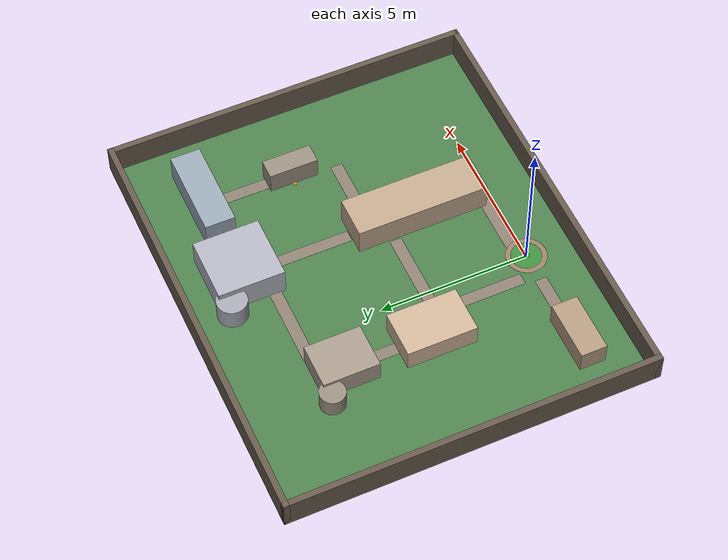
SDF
<?xml version="1.0"?>
<sdf version="1.6">
  <world name="northeastern_campus_scaled">

    <!-- Physics settings - can increase real_time_update_rate for faster sim -->
    <physics type="ode">
      <real_time_update_rate>1000.0</real_time_update_rate>
      <max_step_size>0.001</max_step_size>
      <gravity>0 0 -9.81</gravity>
      <ode>
        <solver>
          <type>quick</type>
          <iters>50</iters>
          <sor>1.3</sor>
        </solver>
        <constraints>
          <cfm>0.0</cfm>
          <erp>0.2</erp>
          <contact_max_correcting_vel>100.0</contact_max_correcting_vel>
          <contact_surface_layer>0.001</contact_surface_layer>
        </constraints>
      </ode>
    </physics>

    <!-- Lighting -->
    <light name="sun" type="directional">
      <cast_shadows>true</cast_shadows>
      <pose>0 0 15 0 0 0</pose>
      <diffuse>0.9 0.9 0.9 1</diffuse>
      <specular>0.5 0.5 0.5 1</specular>
      <direction>-0.5 0.3 -0.9</direction>
    </light>

    <scene>
      <ambient>0.6 0.6 0.6 1</ambient>
      <background>0.7 0.85 1.0 1</background>
      <shadows>true</shadows>
    </scene>

    <model name="campus_ground">
      <static>true</static>
      <pose>1.5 4.5 0 0 0 0</pose>
      <link name="link">
        <collision name="collision">
          <geometry>
            <box><size>14 12 0.1</size></box>
          </geometry>
          <surface>
            <friction>
              <ode>
                <mu>1.0</mu>
                <mu2>1.0</mu2>
              </ode>
            </friction>
          </surface>
        </collision>
        <visual name="visual">
          <geometry>
            <box><size>14 12 0.1</size></box>
          </geometry>
          <material>
            <ambient>0.3 0.5 0.3 1</ambient>
            <diffuse>0.3 0.5 0.3 1</diffuse>
          </material>
        </visual>
      </link>
    </model>

    <!-- North Wall (y = 10.5) -->
    <model name="wall_north">
      <static>true</static>
      <pose>1.5 10.6 0.5 0 0 0</pose>
      <link name="link">
        <collision name="collision">
          <geometry><box><size>14.4 0.2 1.0</size></box></geometry>
        </collision>
        <visual name="visual">
          <geometry><box><size>14.4 0.2 1.0</size></box></geometry>
          <material>
            <ambient>0.4 0.35 0.3 1</ambient>
            <diffuse>0.4 0.35 0.3 1</diffuse>
          </material>
        </visual>
      </link>
    </model>

    <!-- South Wall (y = -1.5) -->
    <model name="wall_south">
      <static>true</static>
      <pose>1.5 -1.6 0.5 0 0 0</pose>
      <link name="link">
        <collision name="collision">
          <geometry><box><size>14.4 0.2 1.0</size></box></geometry>
        </collision>
        <visual name="visual">
          <geometry><box><size>14.4 0.2 1.0</size></box></geometry>
          <material>
            <ambient>0.4 0.35 0.3 1</ambient>
            <diffuse>0.4 0.35 0.3 1</diffuse>
          </material>
        </visual>
      </link>
    </model>

    <!-- East Wall (x = 8.5) -->
    <model name="wall_east">
      <static>true</static>
      <pose>8.6 4.5 0.5 0 0 0</pose>
      <link name="link">
        <collision name="collision">
          <geometry><box><size>0.2 12.4 1.0</size></box></geometry>
        </collision>
        <visual name="visual">
          <geometry><box><size>0.2 12.4 1.0</size></box></geometry>
          <material>
            <ambient>0.4 0.35 0.3 1</ambient>
            <diffuse>0.4 0.35 0.3 1</diffuse>
          </material>
        </visual>
      </link>
    </model>

    <!-- West Wall (x = -5.5) -->
    <model name="wall_west">
      <static>true</static>
      <pose>-5.6 4.5 0.5 0 0 0</pose>
      <link name="link">
        <collision name="collision">
          <geometry><box><size>0.2 12.4 1.0</size></box></geometry>
        </collision>
        <visual name="visual">
          <geometry><box><size>0.2 12.4 1.0</size></box></geometry>
          <material>
            <ambient>0.4 0.35 0.3 1</ambient>
            <diffuse>0.4 0.35 0.3 1</diffuse>
          </material>
        </visual>
      </link>
    </model>

    <model name="quad_path">
      <static>true</static>
      <pose>0 0 0.052 0 0 0</pose>
      <link name="link">
        <visual name="visual">
          <geometry>
            <cylinder>
              <radius>0.67</radius>
              <length>0.004</length>
            </cylinder>
          </geometry>
          <material>
            <ambient>0.6 0.5 0.4 1</ambient>
            <diffuse>0.6 0.5 0.4 1</diffuse>
          </material>
        </visual>
      </link>
    </model>

    <model name="quad_inner">
      <static>true</static>
      <pose>0 0 0.053 0 0 0</pose>
      <link name="link">
        <visual name="visual">
          <geometry>
            <cylinder>
              <radius>0.5</radius>
              <length>0.003</length>
            </cylinder>
          </geometry>
          <material>
            <ambient>0.25 0.55 0.25 1</ambient>
            <diffuse>0.25 0.55 0.25 1</diffuse>
          </material>
        </visual>
      </link>
    </model>

    <model name="dodge_hall">
      <static>true</static>
      <pose>-3.5 0 0.4 0 0 0</pose>
      <link name="link">
        <collision name="collision">
          <geometry><box><size>2.0 0.87 0.8</size></box></geometry>
        </collision>
        <visual name="visual">
          <geometry><box><size>2.0 0.87 0.8</size></box></geometry>
          <material>
            <ambient>0.7 0.6 0.5 1</ambient>
            <diffuse>0.7 0.6 0.5 1</diffuse>
          </material>
        </visual>
      </link>
    </model>

    <model name="ell_hall">
      <static>true</static>
      <pose>-1.5 4.0 0.4 0 0 0</pose>
      <link name="link">
        <collision name="collision">
          <geometry><box><size>1.57 2.34 0.8</size></box></geometry>
        </collision>
        <visual name="visual">
          <geometry><box><size>1.57 2.34 0.8</size></box></geometry>
          <material>
            <ambient>0.8 0.7 0.6 1</ambient>
            <diffuse>0.8 0.7 0.6 1</diffuse>
          </material>
        </visual>
      </link>
    </model>

    <model name="richards_hall">
      <static>true</static>
      <pose>3.0 2.5 0.5 0 0 0</pose>
      <link name="link">
        <collision name="collision">
          <geometry><box><size>1.4 4.44 1.0</size></box></geometry>
        </collision>
        <visual name="visual">
          <geometry><box><size>1.4 4.44 1.0</size></box></geometry>
          <material>
            <ambient>0.75 0.65 0.55 1</ambient>
            <diffuse>0.75 0.65 0.55 1</diffuse>
          </material>
        </visual>
      </link>
    </model>

    <model name="curry">
      <static>true</static>
      <pose>-1.5 7.0 0.4 0 0 0</pose>
      <link name="link">
        <collision name="collision">
          <geometry><box><size>1.5 1.87 0.8</size></box></geometry>
        </collision>
        <visual name="visual">
          <geometry><box><size>1.5 1.87 0.8</size></box></geometry>
          <material>
            <ambient>0.65 0.6 0.55 1</ambient>
            <diffuse>0.65 0.6 0.55 1</diffuse>
          </material>
        </visual>
      </link>
    </model>

    <!-- Curry curved section -->
    <model name="curry_curve">
      <static>true</static>
      <pose>-2.5 7.75 0.35 0 0 0</pose>
      <link name="link">
        <collision name="collision">
          <geometry>
            <cylinder>
              <radius>0.42</radius>
              <length>0.7</length>
            </cylinder>
          </geometry>
        </collision>
        <visual name="visual">
          <geometry>
            <cylinder>
              <radius>0.42</radius>
              <length>0.7</length>
            </cylinder>
          </geometry>
          <material>
            <ambient>0.6 0.55 0.5 1</ambient>
            <diffuse>0.6 0.55 0.5 1</diffuse>
          </material>
        </visual>
      </link>
    </model>

    <model name="snell_library">
      <static>true</static>
      <pose>3.0 8.5 0.5 0 0 0</pose>
      <link name="link">
        <collision name="collision">
          <geometry><box><size>2.17 2.2 1.0</size></box></geometry>
        </collision>
        <visual name="visual">
          <geometry><box><size>2.17 2.2 1.0</size></box></geometry>
          <material>
            <ambient>0.7 0.7 0.75 1</ambient>
            <diffuse>0.7 0.7 0.75 1</diffuse>
          </material>
        </visual>
      </link>
    </model>

    <!-- Snell Library curved section -->
    <model name="snell_curve">
      <static>true</static>
      <pose>1.75 9.25 0.4 0 0 0</pose>
      <link name="link">
        <collision name="collision">
          <geometry>
            <cylinder>
              <radius>0.5</radius>
              <length>0.8</length>
            </cylinder>
          </geometry>
        </collision>
        <visual name="visual">
          <geometry>
            <cylinder>
              <radius>0.5</radius>
              <length>0.8</length>
            </cylinder>
          </geometry>
          <material>
            <ambient>0.65 0.65 0.7 1</ambient>
            <diffuse>0.65 0.65 0.7 1</diffuse>
          </material>
        </visual>
      </link>
    </model>

    <model name="churchill_hall">
      <static>true</static>
      <pose>6.0 5.5 0.4 0 0 0</pose>
      <link name="link">
        <collision name="collision">
          <geometry><box><size>0.67 1.64 0.8</size></box></geometry>
        </collision>
        <visual name="visual">
          <geometry><box><size>0.67 1.64 0.8</size></box></geometry>
          <material>
            <ambient>0.6 0.55 0.5 1</ambient>
            <diffuse>0.6 0.55 0.5 1</diffuse>
          </material>
        </visual>
      </link>
    </model>

    <model name="snell_engineering">
      <static>true</static>
      <pose>6.0 8.5 0.5 0 0 0</pose>
      <link name="link">
        <collision name="collision">
          <geometry><box><size>3.0 1.0 1.0</size></box></geometry>
        </collision>
        <visual name="visual">
          <geometry><box><size>3.0 1.0 1.0</size></box></geometry>
          <material>
            <ambient>0.6 0.65 0.7 1</ambient>
            <diffuse>0.6 0.65 0.7 1</diffuse>
          </material>
        </visual>
      </link>
    </model>

    <!-- Dodge to Quad -->
    <model name="path_dodge_quad">
      <static>true</static>
      <pose>-1.75 0 0.052 0 0 0</pose>
      <link name="link">
        <visual name="visual">
          <geometry><box><size>1.5 0.4 0.004</size></box></geometry>
          <material>
            <ambient>0.55 0.5 0.45 1</ambient>
            <diffuse>0.55 0.5 0.45 1</diffuse>
          </material>
        </visual>
      </link>
    </model>

    <!-- Quad to Richards -->
    <model name="path_quad_richards">
      <static>true</static>
      <pose>1.5 0.25 0.052 0 0 0</pose>
      <link name="link">
        <visual name="visual">
          <geometry><box><size>2.0 0.4 0.004</size></box></geometry>
          <material>
            <ambient>0.55 0.5 0.45 1</ambient>
            <diffuse>0.55 0.5 0.45 1</diffuse>
          </material>
        </visual>
      </link>
    </model>

    <!-- Quad to Ell (vertical) -->
    <model name="path_quad_ell">
      <static>true</static>
      <pose>-0.75 2.0 0.052 0 0 0</pose>
      <link name="link">
        <visual name="visual">
          <geometry><box><size>0.4 3.0 0.004</size></box></geometry>
          <material>
            <ambient>0.55 0.5 0.45 1</ambient>
            <diffuse>0.55 0.5 0.45 1</diffuse>
          </material>
        </visual>
      </link>
    </model>

    <!-- Ell to Curry (vertical) -->
    <model name="path_ell_curry">
      <static>true</static>
      <pose>-1.5 5.5 0.052 0 0 0</pose>
      <link name="link">
        <visual name="visual">
          <geometry><box><size>0.4 1.0 0.004</size></box></geometry>
          <material>
            <ambient>0.55 0.5 0.45 1</ambient>
            <diffuse>0.55 0.5 0.45 1</diffuse>
          </material>
        </visual>
      </link>
    </model>

    <!-- Richards to Snell Library (vertical) -->
    <model name="path_richards_snell">
      <static>true</static>
      <pose>3.0 6.0 0.052 0 0 0</pose>
      <link name="link">
        <visual name="visual">
          <geometry><box><size>0.4 2.5 0.004</size></box></geometry>
          <material>
            <ambient>0.55 0.5 0.45 1</ambient>
            <diffuse>0.55 0.5 0.45 1</diffuse>
          </material>
        </visual>
      </link>
    </model>

    <!-- Cross path: Ell to Richards area -->
    <model name="path_ell_richards">
      <static>true</static>
      <pose>0.75 3.5 0.052 0 0 0</pose>
      <link name="link">
        <visual name="visual">
          <geometry><box><size>3.0 0.4 0.004</size></box></geometry>
          <material>
            <ambient>0.55 0.5 0.45 1</ambient>
            <diffuse>0.55 0.5 0.45 1</diffuse>
          </material>
        </visual>
      </link>
    </model>

    <!-- Cross path: Curry to Snell Library -->
    <model name="path_curry_snell">
      <static>true</static>
      <pose>0.75 7.75 0.052 0 0 0</pose>
      <link name="link">
        <visual name="visual">
          <geometry><box><size>3.0 0.4 0.004</size></box></geometry>
          <material>
            <ambient>0.55 0.5 0.45 1</ambient>
            <diffuse>0.55 0.5 0.45 1</diffuse>
          </material>
        </visual>
      </link>
    </model>

    <!-- Richards to Churchill -->
    <model name="path_richards_churchill">
      <static>true</static>
      <pose>4.75 4.0 0.052 0 0 0</pose>
      <link name="link">
        <visual name="visual">
          <geometry><box><size>2.0 0.4 0.004</size></box></geometry>
          <material>
            <ambient>0.55 0.5 0.45 1</ambient>
            <diffuse>0.55 0.5 0.45 1</diffuse>
          </material>
        </visual>
      </link>
    </model>

    <!-- Churchill to Snell Eng (vertical) -->
    <model name="path_churchill_snelleng">
      <static>true</static>
      <pose>6.0 7.0 0.052 0 0 0</pose>
      <link name="link">
        <visual name="visual">
          <geometry><box><size>0.4 2.0 0.004</size></box></geometry>
          <material>
            <ambient>0.55 0.5 0.45 1</ambient>
            <diffuse>0.55 0.5 0.45 1</diffuse>
          </material>
        </visual>
      </link>
    </model>

    <!-- Snell Library to Snell Eng -->
    <model name="path_snell_snelleng">
      <static>true</static>
      <pose>4.5 8.5 0.052 0 0 0</pose>
      <link name="link">
        <visual name="visual">
          <geometry><box><size>1.0 0.4 0.004</size></box></geometry>
          <material>
            <ambient>0.55 0.5 0.45 1</ambient>
            <diffuse>0.55 0.5 0.45 1</diffuse>
          </material>
        </visual>
      </link>
    </model>

    <!-- QUAD marker - Green (spawn point) -->
    <model name="marker_QUAD">
      <static>true</static>
      <pose>0 0 0.055 0 0 0</pose>
      <link name="link">
        <visual name="visual">
          <geometry>
            <cylinder>
              <radius>0.1</radius>
              <length>0.01</length>
            </cylinder>
          </geometry>
          <material>
            <ambient>0 0.9 0 1</ambient>
            <diffuse>0 0.9 0 1</diffuse>
          </material>
        </visual>
      </link>
    </model>

    <!-- Dodge marker - Red -->
    <model name="marker_DG">
      <static>true</static>
      <pose>-2.5 0 0.055 0 0 0</pose>
      <link name="link">
        <visual name="visual">
          <geometry>
            <cylinder>
              <radius>0.08</radius>
              <length>0.01</length>
            </cylinder>
          </geometry>
          <material>
            <ambient>0.9 0.1 0.1 1</ambient>
            <diffuse>0.9 0.1 0.1 1</diffuse>
          </material>
        </visual>
      </link>
    </model>

    <!-- Ell marker - Blue -->
    <model name="marker_EL">
      <static>true</static>
      <pose>-1.5 2.8 0.055 0 0 0</pose>
      <link name="link">
        <visual name="visual">
          <geometry>
            <cylinder>
              <radius>0.08</radius>
              <length>0.01</length>
            </cylinder>
          </geometry>
          <material>
            <ambient>0.1 0.1 0.9 1</ambient>
            <diffuse>0.1 0.1 0.9 1</diffuse>
          </material>
        </visual>
      </link>
    </model>

    <!-- Richards marker - Yellow -->
    <model name="marker_RH">
      <static>true</static>
      <pose>3.0 0.2 0.055 0 0 0</pose>
      <link name="link">
        <visual name="visual">
          <geometry>
            <cylinder>
              <radius>0.08</radius>
              <length>0.01</length>
            </cylinder>
          </geometry>
          <material>
            <ambient>0.9 0.9 0.1 1</ambient>
            <diffuse>0.9 0.9 0.1 1</diffuse>
          </material>
        </visual>
      </link>
    </model>

    <!-- Curry marker - Cyan -->
    <model name="marker_CSC">
      <static>true</static>
      <pose>-1.5 6.0 0.055 0 0 0</pose>
      <link name="link">
        <visual name="visual">
          <geometry>
            <cylinder>
              <radius>0.08</radius>
              <length>0.01</length>
            </cylinder>
          </geometry>
          <material>
            <ambient>0.1 0.9 0.9 1</ambient>
            <diffuse>0.1 0.9 0.9 1</diffuse>
          </material>
        </visual>
      </link>
    </model>

    <!-- Snell Library marker - Magenta -->
    <model name="marker_SL">
      <static>true</static>
      <pose>3.0 7.35 0.055 0 0 0</pose>
      <link name="link">
        <visual name="visual">
          <geometry>
            <cylinder>
              <radius>0.08</radius>
              <length>0.01</length>
            </cylinder>
          </geometry>
          <material>
            <ambient>0.9 0.1 0.9 1</ambient>
            <diffuse>0.9 0.1 0.9 1</diffuse>
          </material>
        </visual>
      </link>
    </model>

    <!-- Churchill marker - Orange -->
    <model name="marker_CH">
      <static>true</static>
      <pose>5.65 5.5 0.055 0 0 0</pose>
      <link name="link">
        <visual name="visual">
          <geometry>
            <cylinder>
              <radius>0.08</radius>
              <length>0.01</length>
            </cylinder>
          </geometry>
          <material>
            <ambient>0.9 0.5 0.1 1</ambient>
            <diffuse>0.9 0.5 0.1 1</diffuse>
          </material>
        </visual>
      </link>
    </model>

    <!-- Snell Engineering marker - Purple -->
    <model name="marker_SE">
      <static>true</static>
      <pose>4.5 8.5 0.055 0 0 0</pose>
      <link name="link">
        <visual name="visual">
          <geometry>
            <cylinder>
              <radius>0.08</radius>
              <length>0.01</length>
            </cylinder>
          </geometry>
          <material>
            <ambient>0.5 0.1 0.5 1</ambient>
            <diffuse>0.5 0.1 0.5 1</diffuse>
          </material>
        </visual>
      </link>
    </model>

  </world>
</sdf>
